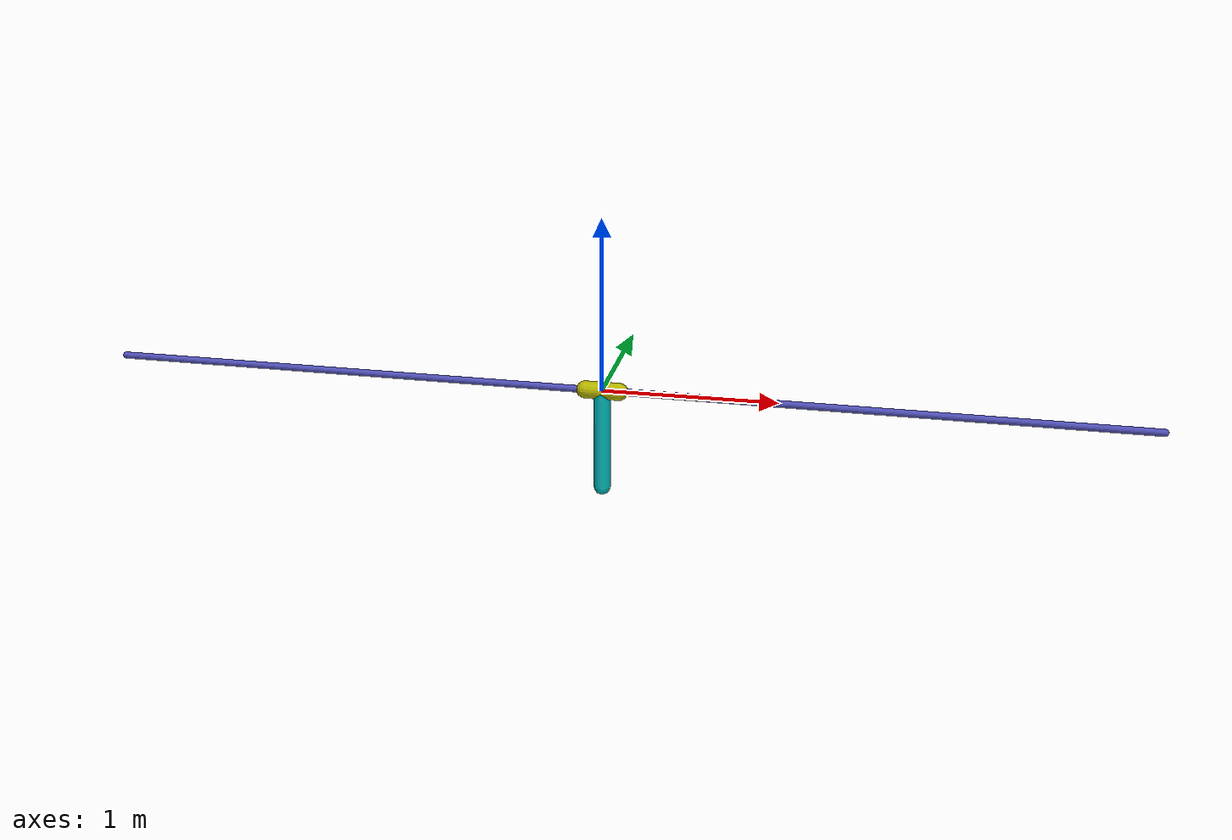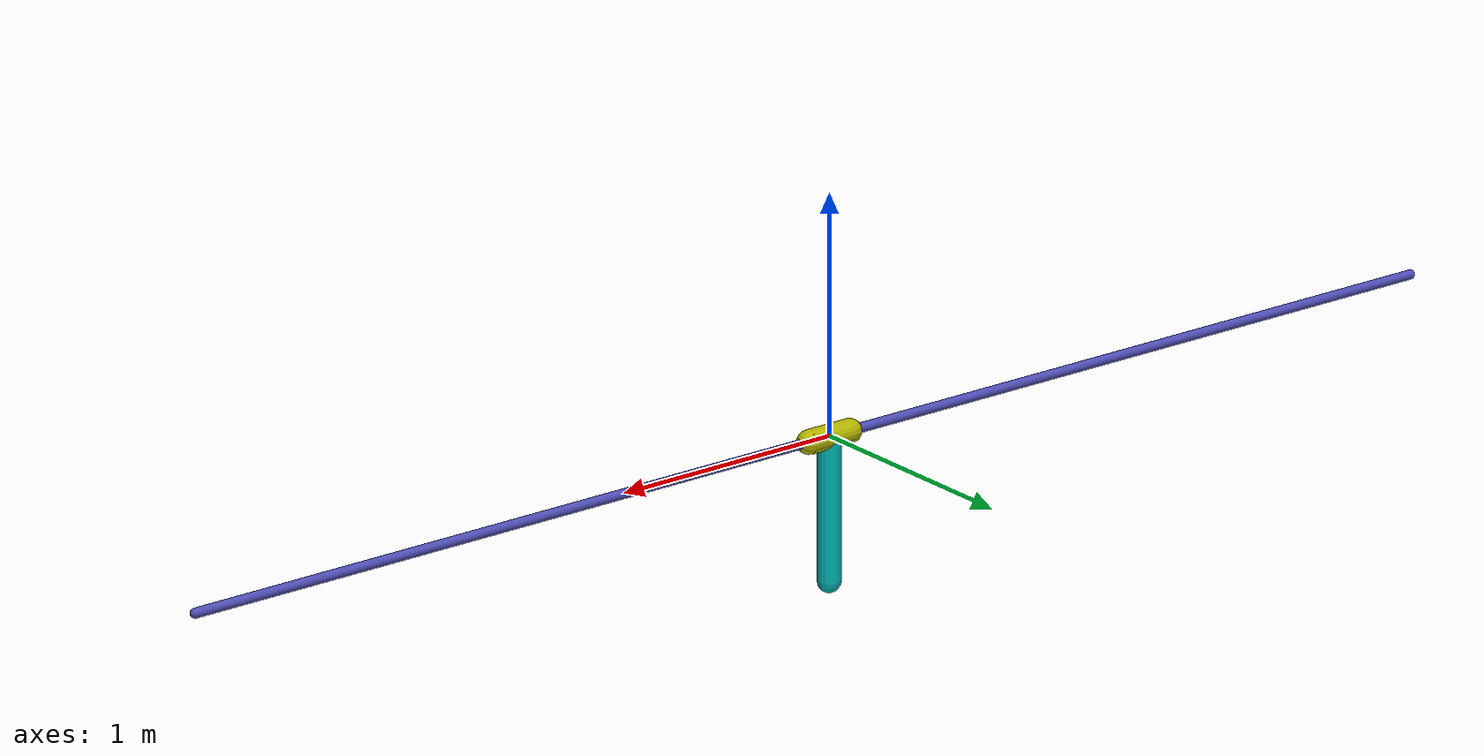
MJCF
<mujoco model="cartpole">
	<compiler inertiafromgeom="true"/>
	<default>
		<joint armature="0" damping="1" limited="true"/>
		<geom contype="0" friction="1 0.1 0.1" rgba="0.7 0.7 0 1"/>
		<tendon/>
		<motor ctrlrange="-3 3" ctrllimited='true'/>
	</default>
    <asset>
		<texture type="skybox" builtin="checker" rgb1="1 1 1" rgb2="1 1 1"
                    width="256" height="256"/>
        <texture name="texgeom" type="cube" builtin="flat" mark="cross" width="127" height="1278" rgb1="0.8 0.6 0.4" rgb2="0.8 0.6 0.4" markrgb="1 1 1" random="0.01" />
		<texture name="texplane" type="2d" builtin="checker" rgb1=".5 .5 .5" rgb2=".5 .5 .5" width="100" height="100" />
        <texture name="texplane_show" type="2d" builtin="checker" rgb1="0 0 0" rgb2="0.9 0.9 0.9" width="100" height="100" />
        <material name='MatPlane' texture="texplane" shininess="1" texrepeat="30 30" specular="1"  reflectance="0.5" />
        <material name='geom' texture="texgeom" texuniform="true" />
 	</asset>
	<option gravity="0 0 -9.81" integrator="RK4" timestep="0.02"/>
	<size nstack="3000"/>
	<worldbody>
		<geom name="rail" pos="0 0 0" quat="0.707 0 0.707 0" rgba="0.3 0.3 0.7 1" size="0.02 3" type="capsule"/>
		<body name="cart" pos="0 0 0">
			<joint axis="1 0 0" limited="true" name="slider" pos="0 0 0" range="-2.5 2.5" type="slide"/>
			<geom name="cart" pos="0 0 0" quat="0.707 0 0.707 0" size="0.05 0.1" type="capsule"/>
			<body name="pole" pos="0 0 0">
				<joint axis="0 1 0" limited="false" name="hinge" pos="0 0 0" range="-180 180" type="hinge"/>
				<geom fromto="0 0 0 0.001 0 -0.6" name="cpole" rgba="0 0.7 0.7 1" size="0.049 0.3" type="capsule"/>
			</body>
		</body>
	</worldbody>
	<actuator>
		<motor gear="100" joint="slider" name="slide"/>
	</actuator>
</mujoco>
